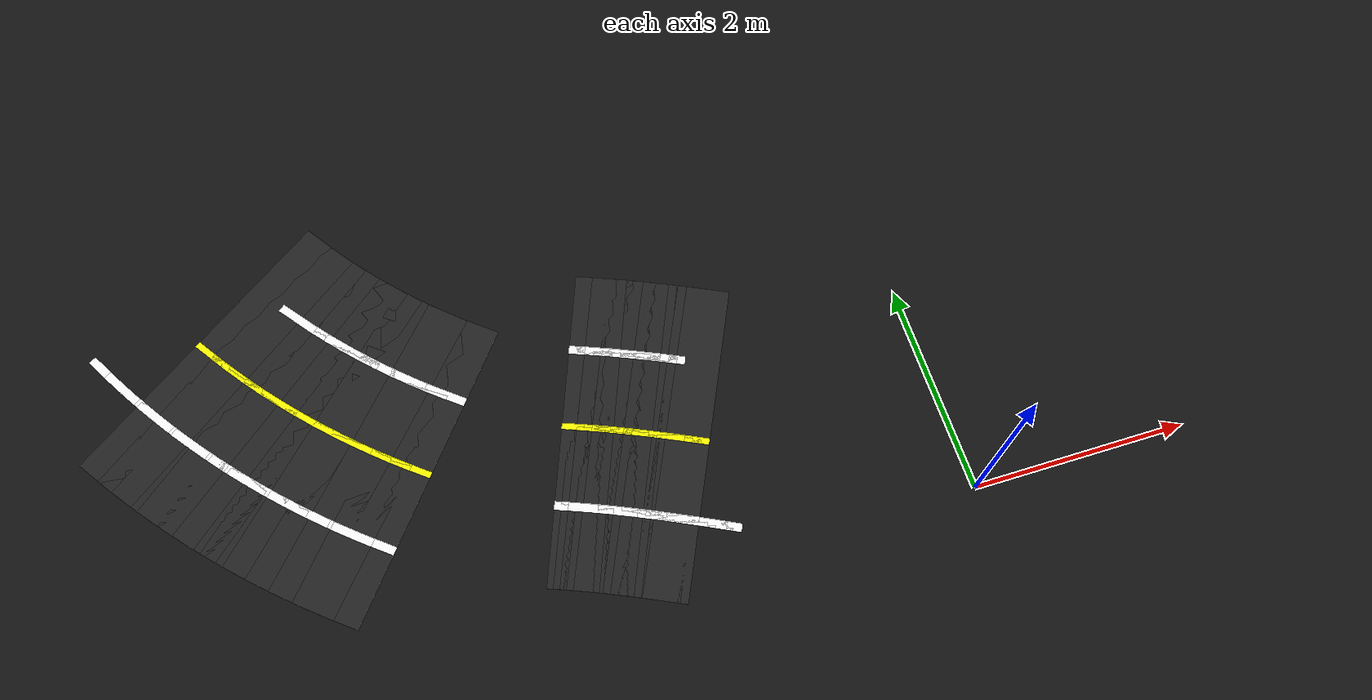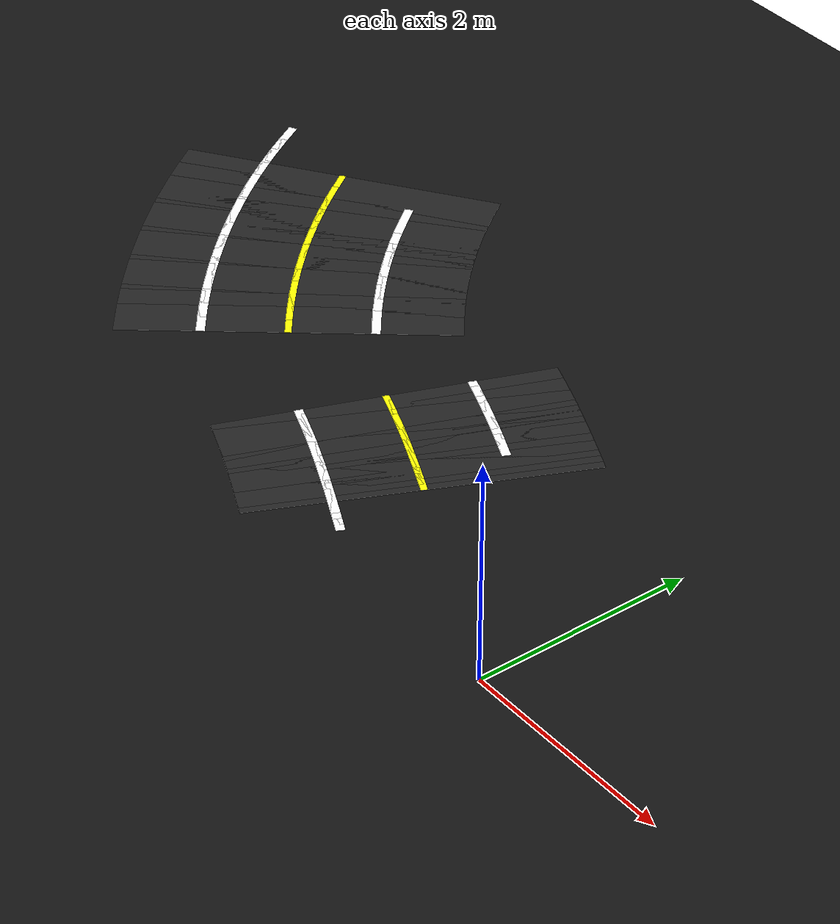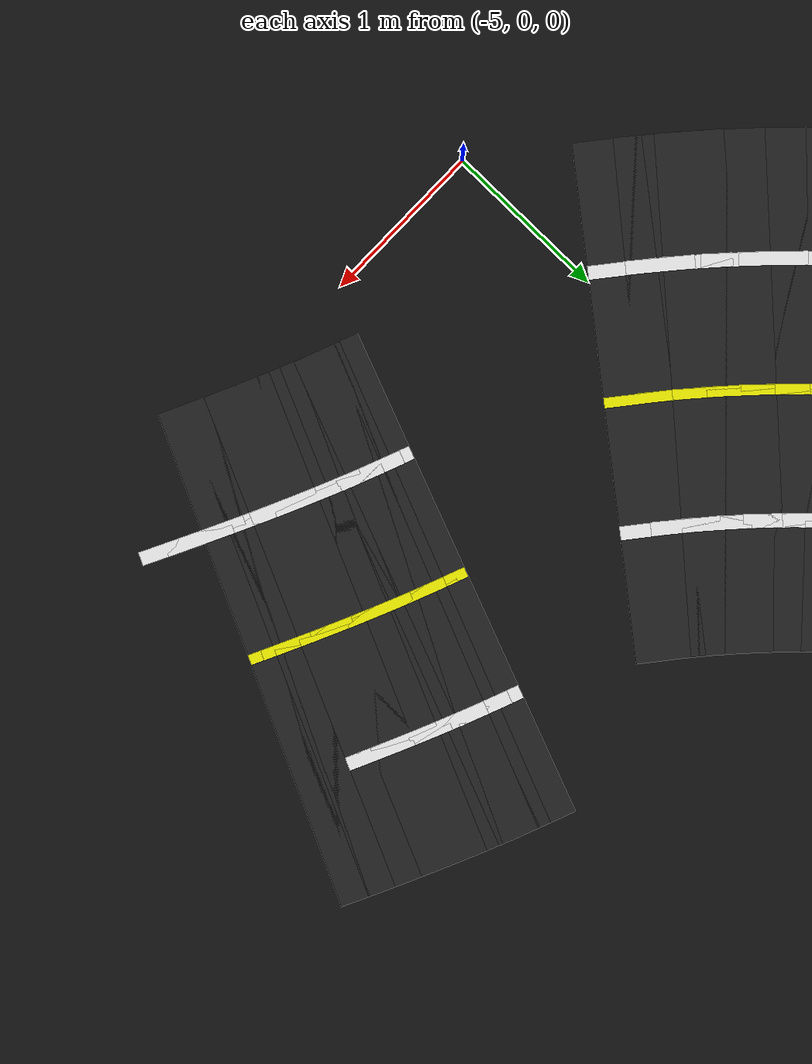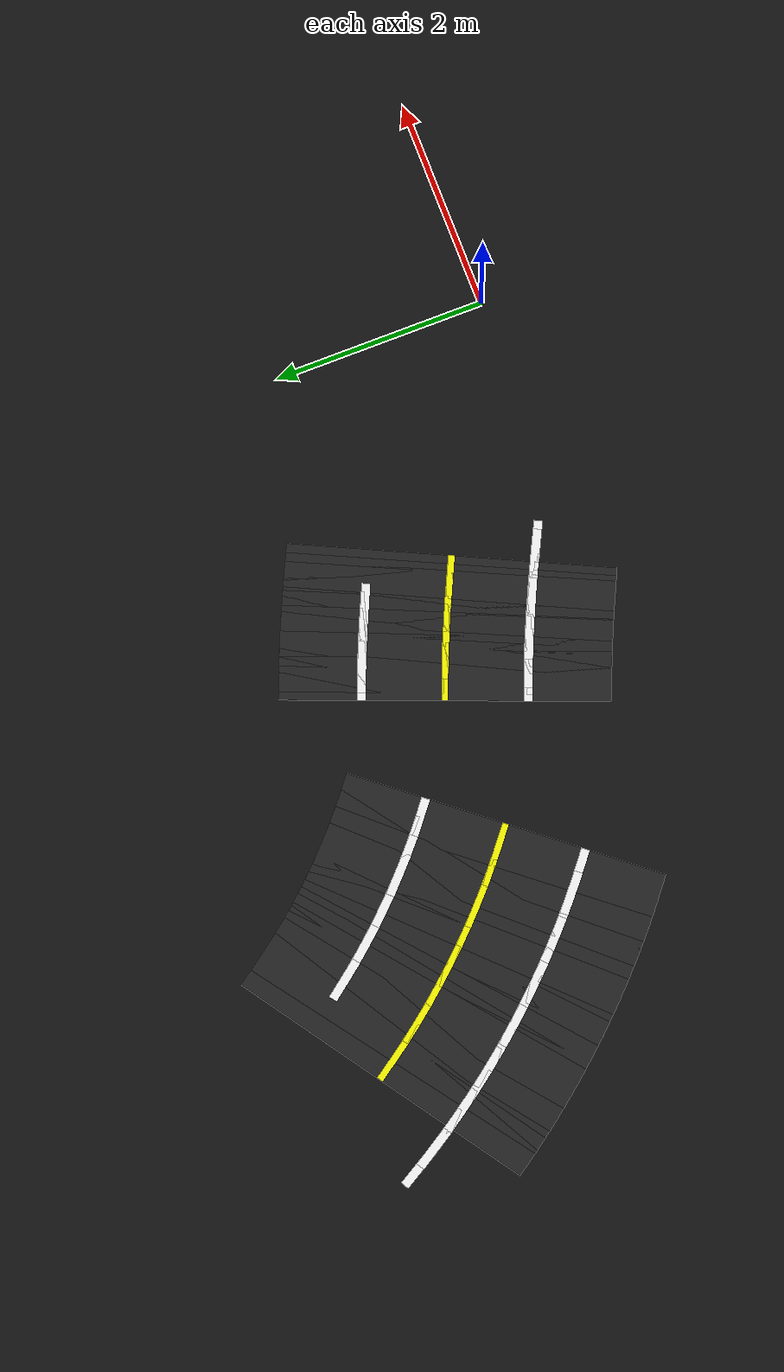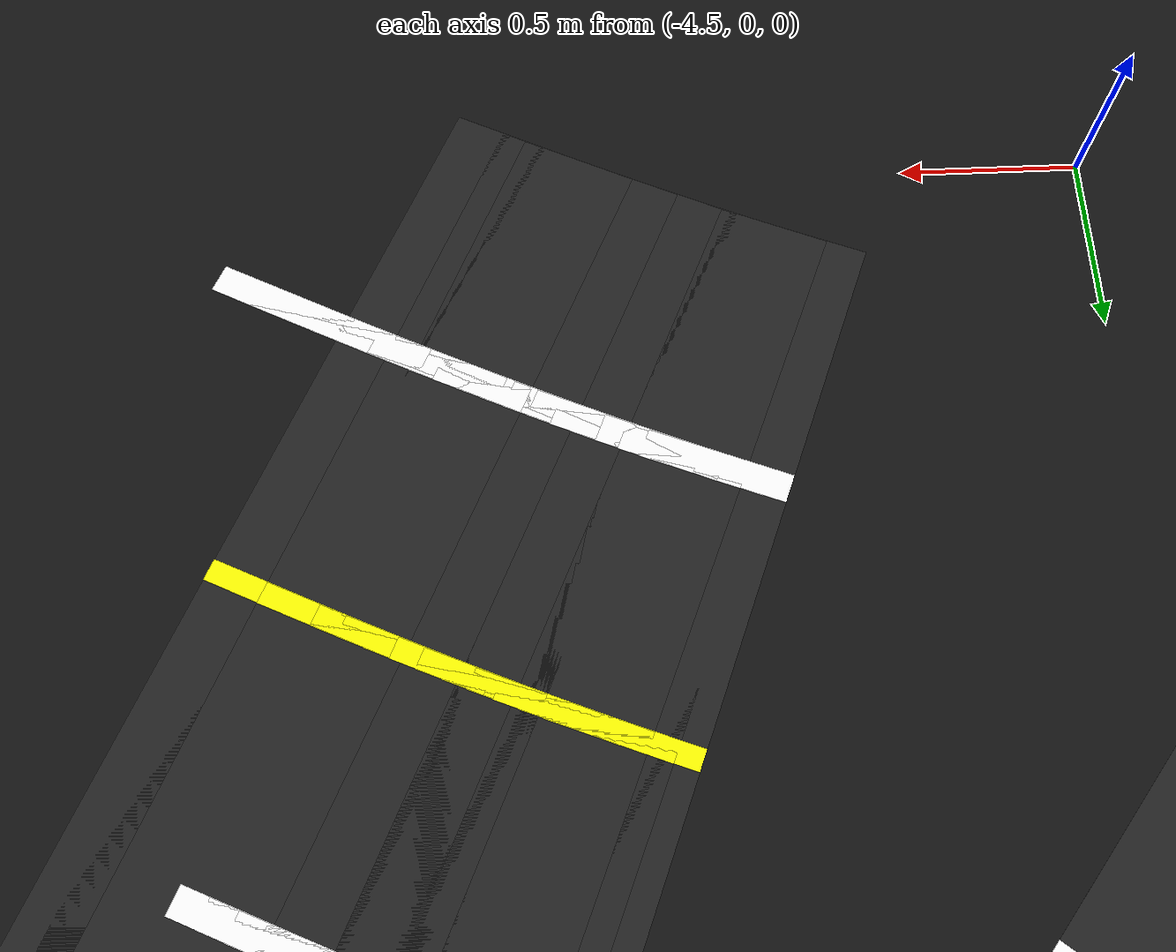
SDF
<sdf version="1.6">
 <world name="figure8_world">
  <model name="ground_plane">
   <static>true</static>
   <link name="link">
    <collision name="collision">
     <geometry><plane><normal>0 0 1</normal><size>120 120</size></plane></geometry>
    </collision>
    <visual name="visual">
     <geometry><plane><normal>0 0 1</normal><size>120 120</size></plane></geometry>
     <material><ambient>0.08 0.08 0.08 1</ambient><diffuse>0.08 0.08 0.08 1</diffuse></material>
    </visual>
   </link>
  </model>
  <model name="seg_00561">
   <static>true</static>
   <pose>-7.1447 3.3750 0.0030 0 0 5.2360</pose>
   <link name="link">
    <collision name="collision"><geometry><box><size>0.4000 0.0800 0.002</size></box></geometry></collision>
    <visual name="visual">
     <geometry><box><size>0.4000 0.0800 0.002</size></box></geometry>
     <material><ambient>1 1 1 1</ambient><diffuse>1 1 1 1</diffuse></material>
    </visual>
   </link>
  </model>
  <model name="seg_00565">
   <static>true</static>
   <pose>-7.0343 3.1894 0.0030 0 0 5.2622</pose>
   <link name="link">
    <collision name="collision"><geometry><box><size>0.4000 0.0800 0.002</size></box></geometry></collision>
    <visual name="visual">
     <geometry><box><size>0.4000 0.0800 0.002</size></box></geometry>
     <material><ambient>1 1 1 1</ambient><diffuse>1 1 1 1</diffuse></material>
    </visual>
   </link>
  </model>
  <model name="seg_00569">
   <static>true</static>
   <pose>-6.9190 3.0067 0.0030 0 0 5.2883</pose>
   <link name="link">
    <collision name="collision"><geometry><box><size>0.4000 0.0800 0.002</size></box></geometry></collision>
    <visual name="visual">
     <geometry><box><size>0.4000 0.0800 0.002</size></box></geometry>
     <material><ambient>1 1 1 1</ambient><diffuse>1 1 1 1</diffuse></material>
    </visual>
   </link>
  </model>
  <model name="seg_00572">
   <static>true</static>
   <pose>-6.1809 3.2520 0.0010 0 0 5.3145</pose>
   <link name="link">
    <collision name="collision"><geometry><box><size>0.4000 3.0000 0.002</size></box></geometry></collision>
    <visual name="visual">
     <geometry><box><size>0.4000 3.0000 0.002</size></box></geometry>
     <material><ambient>0.14 0.14 0.14 1</ambient><diffuse>0.14 0.14 0.14 1</diffuse></material>
    </visual>
   </link>
  </model>
  <model name="seg_00573">
   <static>true</static>
   <pose>-6.7990 2.8271 0.0030 0 0 5.3145</pose>
   <link name="link">
    <collision name="collision"><geometry><box><size>0.4000 0.0800 0.002</size></box></geometry></collision>
    <visual name="visual">
     <geometry><box><size>0.4000 0.0800 0.002</size></box></geometry>
     <material><ambient>1 1 1 1</ambient><diffuse>1 1 1 1</diffuse></material>
    </visual>
   </link>
  </model>
  <model name="seg_00575">
   <static>true</static>
   <pose>-6.1809 3.2520 0.0030 0 0 5.3145</pose>
   <link name="link">
    <collision name="collision"><geometry><box><size>0.4000 0.0600 0.002</size></box></geometry></collision>
    <visual name="visual">
     <geometry><box><size>0.4000 0.0600 0.002</size></box></geometry>
     <material><ambient>1 1 0 1</ambient><diffuse>1 1 0 1</diffuse></material>
    </visual>
   </link>
  </model>
  <model name="seg_00576">
   <static>true</static>
   <pose>-6.0676 3.0916 0.0010 0 0 5.3407</pose>
   <link name="link">
    <collision name="collision"><geometry><box><size>0.4000 3.0000 0.002</size></box></geometry></collision>
    <visual name="visual">
     <geometry><box><size>0.4000 3.0000 0.002</size></box></geometry>
     <material><ambient>0.14 0.14 0.14 1</ambient><diffuse>0.14 0.14 0.14 1</diffuse></material>
    </visual>
   </link>
  </model>
  <model name="seg_00577">
   <static>true</static>
   <pose>-6.6744 2.6508 0.0030 0 0 5.3407</pose>
   <link name="link">
    <collision name="collision"><geometry><box><size>0.4000 0.0800 0.002</size></box></geometry></collision>
    <visual name="visual">
     <geometry><box><size>0.4000 0.0800 0.002</size></box></geometry>
     <material><ambient>1 1 1 1</ambient><diffuse>1 1 1 1</diffuse></material>
    </visual>
   </link>
  </model>
  <model name="seg_00579">
   <static>true</static>
   <pose>-6.0676 3.0916 0.0030 0 0 5.3407</pose>
   <link name="link">
    <collision name="collision"><geometry><box><size>0.4000 0.0600 0.002</size></box></geometry></collision>
    <visual name="visual">
     <geometry><box><size>0.4000 0.0600 0.002</size></box></geometry>
     <material><ambient>1 1 0 1</ambient><diffuse>1 1 0 1</diffuse></material>
    </visual>
   </link>
  </model>
  <model name="seg_00580">
   <static>true</static>
   <pose>-5.9502 2.9343 0.0010 0 0 5.3669</pose>
   <link name="link">
    <collision name="collision"><geometry><box><size>0.4000 3.0000 0.002</size></box></geometry></collision>
    <visual name="visual">
     <geometry><box><size>0.4000 3.0000 0.002</size></box></geometry>
     <material><ambient>0.14 0.14 0.14 1</ambient><diffuse>0.14 0.14 0.14 1</diffuse></material>
    </visual>
   </link>
  </model>
  <model name="seg_00581">
   <static>true</static>
   <pose>-6.5452 2.4777 0.0030 0 0 5.3669</pose>
   <link name="link">
    <collision name="collision"><geometry><box><size>0.4000 0.0800 0.002</size></box></geometry></collision>
    <visual name="visual">
     <geometry><box><size>0.4000 0.0800 0.002</size></box></geometry>
     <material><ambient>1 1 1 1</ambient><diffuse>1 1 1 1</diffuse></material>
    </visual>
   </link>
  </model>
  <model name="seg_00582">
   <static>true</static>
   <pose>-5.3551 3.3909 0.0030 0 0 5.3669</pose>
   <link name="link">
    <collision name="collision"><geometry><box><size>0.4000 0.0800 0.002</size></box></geometry></collision>
    <visual name="visual">
     <geometry><box><size>0.4000 0.0800 0.002</size></box></geometry>
     <material><ambient>1 1 1 1</ambient><diffuse>1 1 1 1</diffuse></material>
    </visual>
   </link>
  </model>
  <model name="seg_00583">
   <static>true</static>
   <pose>-5.9502 2.9343 0.0030 0 0 5.3669</pose>
   <link name="link">
    <collision name="collision"><geometry><box><size>0.4000 0.0600 0.002</size></box></geometry></collision>
    <visual name="visual">
     <geometry><box><size>0.4000 0.0600 0.002</size></box></geometry>
     <material><ambient>1 1 0 1</ambient><diffuse>1 1 0 1</diffuse></material>
    </visual>
   </link>
  </model>
  <model name="seg_00584">
   <static>true</static>
   <pose>-5.8286 2.7801 0.0010 0 0 5.3931</pose>
   <link name="link">
    <collision name="collision"><geometry><box><size>0.4000 3.0000 0.002</size></box></geometry></collision>
    <visual name="visual">
     <geometry><box><size>0.4000 3.0000 0.002</size></box></geometry>
     <material><ambient>0.14 0.14 0.14 1</ambient><diffuse>0.14 0.14 0.14 1</diffuse></material>
    </visual>
   </link>
  </model>
  <model name="seg_00585">
   <static>true</static>
   <pose>-6.4115 2.3081 0.0030 0 0 5.3931</pose>
   <link name="link">
    <collision name="collision"><geometry><box><size>0.4000 0.0800 0.002</size></box></geometry></collision>
    <visual name="visual">
     <geometry><box><size>0.4000 0.0800 0.002</size></box></geometry>
     <material><ambient>1 1 1 1</ambient><diffuse>1 1 1 1</diffuse></material>
    </visual>
   </link>
  </model>
  <model name="seg_00586">
   <static>true</static>
   <pose>-5.2457 3.2521 0.0030 0 0 5.3931</pose>
   <link name="link">
    <collision name="collision"><geometry><box><size>0.4000 0.0800 0.002</size></box></geometry></collision>
    <visual name="visual">
     <geometry><box><size>0.4000 0.0800 0.002</size></box></geometry>
     <material><ambient>1 1 1 1</ambient><diffuse>1 1 1 1</diffuse></material>
    </visual>
   </link>
  </model>
  <model name="seg_00587">
   <static>true</static>
   <pose>-5.8286 2.7801 0.0030 0 0 5.3931</pose>
   <link name="link">
    <collision name="collision"><geometry><box><size>0.4000 0.0600 0.002</size></box></geometry></collision>
    <visual name="visual">
     <geometry><box><size>0.4000 0.0600 0.002</size></box></geometry>
     <material><ambient>1 1 0 1</ambient><diffuse>1 1 0 1</diffuse></material>
    </visual>
   </link>
  </model>
  <model name="seg_00588">
   <static>true</static>
   <pose>-5.7030 2.6291 0.0010 0 0 5.4192</pose>
   <link name="link">
    <collision name="collision"><geometry><box><size>0.4000 3.0000 0.002</size></box></geometry></collision>
    <visual name="visual">
     <geometry><box><size>0.4000 3.0000 0.002</size></box></geometry>
     <material><ambient>0.14 0.14 0.14 1</ambient><diffuse>0.14 0.14 0.14 1</diffuse></material>
    </visual>
   </link>
  </model>
  <model name="seg_00589">
   <static>true</static>
   <pose>-6.2733 2.1421 0.0030 0 0 5.4192</pose>
   <link name="link">
    <collision name="collision"><geometry><box><size>0.4000 0.0800 0.002</size></box></geometry></collision>
    <visual name="visual">
     <geometry><box><size>0.4000 0.0800 0.002</size></box></geometry>
     <material><ambient>1 1 1 1</ambient><diffuse>1 1 1 1</diffuse></material>
    </visual>
   </link>
  </model>
  <model name="seg_00590">
   <static>true</static>
   <pose>-5.1327 3.1162 0.0030 0 0 5.4192</pose>
   <link name="link">
    <collision name="collision"><geometry><box><size>0.4000 0.0800 0.002</size></box></geometry></collision>
    <visual name="visual">
     <geometry><box><size>0.4000 0.0800 0.002</size></box></geometry>
     <material><ambient>1 1 1 1</ambient><diffuse>1 1 1 1</diffuse></material>
    </visual>
   </link>
  </model>
  <model name="seg_00591">
   <static>true</static>
   <pose>-5.7030 2.6291 0.0030 0 0 5.4192</pose>
   <link name="link">
    <collision name="collision"><geometry><box><size>0.4000 0.0600 0.002</size></box></geometry></collision>
    <visual name="visual">
     <geometry><box><size>0.4000 0.0600 0.002</size></box></geometry>
     <material><ambient>1 1 0 1</ambient><diffuse>1 1 0 1</diffuse></material>
    </visual>
   </link>
  </model>
  <model name="seg_00592">
   <static>true</static>
   <pose>-5.5736 2.4815 0.0010 0 0 5.4454</pose>
   <link name="link">
    <collision name="collision"><geometry><box><size>0.4000 3.0000 0.002</size></box></geometry></collision>
    <visual name="visual">
     <geometry><box><size>0.4000 3.0000 0.002</size></box></geometry>
     <material><ambient>0.14 0.14 0.14 1</ambient><diffuse>0.14 0.14 0.14 1</diffuse></material>
    </visual>
   </link>
  </model>
  <model name="seg_00593">
   <static>true</static>
   <pose>-6.1309 1.9797 0.0030 0 0 5.4454</pose>
   <link name="link">
    <collision name="collision"><geometry><box><size>0.4000 0.0800 0.002</size></box></geometry></collision>
    <visual name="visual">
     <geometry><box><size>0.4000 0.0800 0.002</size></box></geometry>
     <material><ambient>1 1 1 1</ambient><diffuse>1 1 1 1</diffuse></material>
    </visual>
   </link>
  </model>
  <model name="seg_00594">
   <static>true</static>
   <pose>-5.0162 2.9834 0.0030 0 0 5.4454</pose>
   <link name="link">
    <collision name="collision"><geometry><box><size>0.4000 0.0800 0.002</size></box></geometry></collision>
    <visual name="visual">
     <geometry><box><size>0.4000 0.0800 0.002</size></box></geometry>
     <material><ambient>1 1 1 1</ambient><diffuse>1 1 1 1</diffuse></material>
    </visual>
   </link>
  </model>
  <model name="seg_00595">
   <static>true</static>
   <pose>-5.5736 2.4815 0.0030 0 0 5.4454</pose>
   <link name="link">
    <collision name="collision"><geometry><box><size>0.4000 0.0600 0.002</size></box></geometry></collision>
    <visual name="visual">
     <geometry><box><size>0.4000 0.0600 0.002</size></box></geometry>
     <material><ambient>1 1 0 1</ambient><diffuse>1 1 0 1</diffuse></material>
    </visual>
   </link>
  </model>
  <model name="seg_00596">
   <static>true</static>
   <pose>-5.4403 2.3373 0.0010 0 0 5.4716</pose>
   <link name="link">
    <collision name="collision"><geometry><box><size>0.4000 3.0000 0.002</size></box></geometry></collision>
    <visual name="visual">
     <geometry><box><size>0.4000 3.0000 0.002</size></box></geometry>
     <material><ambient>0.14 0.14 0.14 1</ambient><diffuse>0.14 0.14 0.14 1</diffuse></material>
    </visual>
   </link>
  </model>
  <model name="seg_00597">
   <static>true</static>
   <pose>-5.9843 1.8211 0.0030 0 0 5.4716</pose>
   <link name="link">
    <collision name="collision"><geometry><box><size>0.4000 0.0800 0.002</size></box></geometry></collision>
    <visual name="visual">
     <geometry><box><size>0.4000 0.0800 0.002</size></box></geometry>
     <material><ambient>1 1 1 1</ambient><diffuse>1 1 1 1</diffuse></material>
    </visual>
   </link>
  </model>
  <model name="seg_00598">
   <static>true</static>
   <pose>-4.8963 2.8536 0.0030 0 0 5.4716</pose>
   <link name="link">
    <collision name="collision"><geometry><box><size>0.4000 0.0800 0.002</size></box></geometry></collision>
    <visual name="visual">
     <geometry><box><size>0.4000 0.0800 0.002</size></box></geometry>
     <material><ambient>1 1 1 1</ambient><diffuse>1 1 1 1</diffuse></material>
    </visual>
   </link>
  </model>
  <model name="seg_00599">
   <static>true</static>
   <pose>-5.4403 2.3373 0.0030 0 0 5.4716</pose>
   <link name="link">
    <collision name="collision"><geometry><box><size>0.4000 0.0600 0.002</size></box></geometry></collision>
    <visual name="visual">
     <geometry><box><size>0.4000 0.0600 0.002</size></box></geometry>
     <material><ambient>1 1 0 1</ambient><diffuse>1 1 0 1</diffuse></material>
    </visual>
   </link>
  </model>
  <model name="seg_00600">
   <static>true</static>
   <pose>-5.3033 2.1967 0.0010 0 0 5.4978</pose>
   <link name="link">
    <collision name="collision"><geometry><box><size>0.4000 3.0000 0.002</size></box></geometry></collision>
    <visual name="visual">
     <geometry><box><size>0.4000 3.0000 0.002</size></box></geometry>
     <material><ambient>0.14 0.14 0.14 1</ambient><diffuse>0.14 0.14 0.14 1</diffuse></material>
    </visual>
   </link>
  </model>
  <model name="seg_00601">
   <static>true</static>
   <pose>-5.8336 1.6664 0.0030 0 0 5.4978</pose>
   <link name="link">
    <collision name="collision"><geometry><box><size>0.4000 0.0800 0.002</size></box></geometry></collision>
    <visual name="visual">
     <geometry><box><size>0.4000 0.0800 0.002</size></box></geometry>
     <material><ambient>1 1 1 1</ambient><diffuse>1 1 1 1</diffuse></material>
    </visual>
   </link>
  </model>
  <model name="seg_00602">
   <static>true</static>
   <pose>-4.7730 2.7270 0.0030 0 0 5.4978</pose>
   <link name="link">
    <collision name="collision"><geometry><box><size>0.4000 0.0800 0.002</size></box></geometry></collision>
    <visual name="visual">
     <geometry><box><size>0.4000 0.0800 0.002</size></box></geometry>
     <material><ambient>1 1 1 1</ambient><diffuse>1 1 1 1</diffuse></material>
    </visual>
   </link>
  </model>
  <model name="seg_00603">
   <static>true</static>
   <pose>-5.3033 2.1967 0.0030 0 0 5.4978</pose>
   <link name="link">
    <collision name="collision"><geometry><box><size>0.4000 0.0600 0.002</size></box></geometry></collision>
    <visual name="visual">
     <geometry><box><size>0.4000 0.0600 0.002</size></box></geometry>
     <material><ambient>1 1 0 1</ambient><diffuse>1 1 0 1</diffuse></material>
    </visual>
   </link>
  </model>
  <model name="seg_00604">
   <static>true</static>
   <pose>-5.1627 2.0597 0.0010 0 0 5.5240</pose>
   <link name="link">
    <collision name="collision"><geometry><box><size>0.4000 3.0000 0.002</size></box></geometry></collision>
    <visual name="visual">
     <geometry><box><size>0.4000 3.0000 0.002</size></box></geometry>
     <material><ambient>0.14 0.14 0.14 1</ambient><diffuse>0.14 0.14 0.14 1</diffuse></material>
    </visual>
   </link>
  </model>
  <model name="seg_00605">
   <static>true</static>
   <pose>-5.6789 1.5157 0.0030 0 0 5.5240</pose>
   <link name="link">
    <collision name="collision"><geometry><box><size>0.4000 0.0800 0.002</size></box></geometry></collision>
    <visual name="visual">
     <geometry><box><size>0.4000 0.0800 0.002</size></box></geometry>
     <material><ambient>1 1 1 1</ambient><diffuse>1 1 1 1</diffuse></material>
    </visual>
   </link>
  </model>
  <model name="seg_00606">
   <static>true</static>
   <pose>-4.6464 2.6037 0.0030 0 0 5.5240</pose>
   <link name="link">
    <collision name="collision"><geometry><box><size>0.4000 0.0800 0.002</size></box></geometry></collision>
    <visual name="visual">
     <geometry><box><size>0.4000 0.0800 0.002</size></box></geometry>
     <material><ambient>1 1 1 1</ambient><diffuse>1 1 1 1</diffuse></material>
    </visual>
   </link>
  </model>
  <model name="seg_00607">
   <static>true</static>
   <pose>-5.1627 2.0597 0.0030 0 0 5.5240</pose>
   <link name="link">
    <collision name="collision"><geometry><box><size>0.4000 0.0600 0.002</size></box></geometry></collision>
    <visual name="visual">
     <geometry><box><size>0.4000 0.0600 0.002</size></box></geometry>
     <material><ambient>1 1 0 1</ambient><diffuse>1 1 0 1</diffuse></material>
    </visual>
   </link>
  </model>
  <model name="seg_00608">
   <static>true</static>
   <pose>-5.0185 1.9264 0.0010 0 0 5.5501</pose>
   <link name="link">
    <collision name="collision"><geometry><box><size>0.4000 3.0000 0.002</size></box></geometry></collision>
    <visual name="visual">
     <geometry><box><size>0.4000 3.0000 0.002</size></box></geometry>
     <material><ambient>0.14 0.14 0.14 1</ambient><diffuse>0.14 0.14 0.14 1</diffuse></material>
    </visual>
   </link>
  </model>
  <model name="seg_00609">
   <static>true</static>
   <pose>-5.5203 1.3691 0.0030 0 0 5.5501</pose>
   <link name="link">
    <collision name="collision"><geometry><box><size>0.4000 0.0800 0.002</size></box></geometry></collision>
    <visual name="visual">
     <geometry><box><size>0.4000 0.0800 0.002</size></box></geometry>
     <material><ambient>1 1 1 1</ambient><diffuse>1 1 1 1</diffuse></material>
    </visual>
   </link>
  </model>
  <model name="seg_00610">
   <static>true</static>
   <pose>-4.5166 2.4838 0.0030 0 0 5.5501</pose>
   <link name="link">
    <collision name="collision"><geometry><box><size>0.4000 0.0800 0.002</size></box></geometry></collision>
    <visual name="visual">
     <geometry><box><size>0.4000 0.0800 0.002</size></box></geometry>
     <material><ambient>1 1 1 1</ambient><diffuse>1 1 1 1</diffuse></material>
    </visual>
   </link>
  </model>
  <model name="seg_00611">
   <static>true</static>
   <pose>-5.0185 1.9264 0.0030 0 0 5.5501</pose>
   <link name="link">
    <collision name="collision"><geometry><box><size>0.4000 0.0600 0.002</size></box></geometry></collision>
    <visual name="visual">
     <geometry><box><size>0.4000 0.0600 0.002</size></box></geometry>
     <material><ambient>1 1 0 1</ambient><diffuse>1 1 0 1</diffuse></material>
    </visual>
   </link>
  </model>
  <model name="seg_00612">
   <static>true</static>
   <pose>-4.8709 1.7970 0.0010 0 0 5.5763</pose>
   <link name="link">
    <collision name="collision"><geometry><box><size>0.4000 3.0000 0.002</size></box></geometry></collision>
    <visual name="visual">
     <geometry><box><size>0.4000 3.0000 0.002</size></box></geometry>
     <material><ambient>0.14 0.14 0.14 1</ambient><diffuse>0.14 0.14 0.14 1</diffuse></material>
    </visual>
   </link>
  </model>
  <model name="seg_00613">
   <static>true</static>
   <pose>-5.3579 1.2267 0.0030 0 0 5.5763</pose>
   <link name="link">
    <collision name="collision"><geometry><box><size>0.4000 0.0800 0.002</size></box></geometry></collision>
    <visual name="visual">
     <geometry><box><size>0.4000 0.0800 0.002</size></box></geometry>
     <material><ambient>1 1 1 1</ambient><diffuse>1 1 1 1</diffuse></material>
    </visual>
   </link>
  </model>
  <model name="seg_00614">
   <static>true</static>
   <pose>-4.3838 2.3673 0.0030 0 0 5.5763</pose>
   <link name="link">
    <collision name="collision"><geometry><box><size>0.4000 0.0800 0.002</size></box></geometry></collision>
    <visual name="visual">
     <geometry><box><size>0.4000 0.0800 0.002</size></box></geometry>
     <material><ambient>1 1 1 1</ambient><diffuse>1 1 1 1</diffuse></material>
    </visual>
   </link>
  </model>
  <model name="seg_00615">
   <static>true</static>
   <pose>-4.8709 1.7970 0.0030 0 0 5.5763</pose>
   <link name="link">
    <collision name="collision"><geometry><box><size>0.4000 0.0600 0.002</size></box></geometry></collision>
    <visual name="visual">
     <geometry><box><size>0.4000 0.0600 0.002</size></box></geometry>
     <material><ambient>1 1 0 1</ambient><diffuse>1 1 0 1</diffuse></material>
    </visual>
   </link>
  </model>
  <model name="seg_00616">
   <static>true</static>
   <pose>-4.7199 1.6714 0.0010 0 0 5.6025</pose>
   <link name="link">
    <collision name="collision"><geometry><box><size>0.4000 3.0000 0.002</size></box></geometry></collision>
    <visual name="visual">
     <geometry><box><size>0.4000 3.0000 0.002</size></box></geometry>
     <material><ambient>0.14 0.14 0.14 1</ambient><diffuse>0.14 0.14 0.14 1</diffuse></material>
    </visual>
   </link>
  </model>
  <model name="seg_00617">
   <static>true</static>
   <pose>-5.1919 1.0885 0.0030 0 0 5.6025</pose>
   <link name="link">
    <collision name="collision"><geometry><box><size>0.4000 0.0800 0.002</size></box></geometry></collision>
    <visual name="visual">
     <geometry><box><size>0.4000 0.0800 0.002</size></box></geometry>
     <material><ambient>1 1 1 1</ambient><diffuse>1 1 1 1</diffuse></material>
    </visual>
   </link>
  </model>
  <model name="seg_00618">
   <static>true</static>
   <pose>-4.2479 2.2543 0.0030 0 0 5.6025</pose>
   <link name="link">
    <collision name="collision"><geometry><box><size>0.4000 0.0800 0.002</size></box></geometry></collision>
    <visual name="visual">
     <geometry><box><size>0.4000 0.0800 0.002</size></box></geometry>
     <material><ambient>1 1 1 1</ambient><diffuse>1 1 1 1</diffuse></material>
    </visual>
   </link>
  </model>
  <model name="seg_00619">
   <static>true</static>
   <pose>-4.7199 1.6714 0.0030 0 0 5.6025</pose>
   <link name="link">
    <collision name="collision"><geometry><box><size>0.4000 0.0600 0.002</size></box></geometry></collision>
    <visual name="visual">
     <geometry><box><size>0.4000 0.0600 0.002</size></box></geometry>
     <material><ambient>1 1 0 1</ambient><diffuse>1 1 0 1</diffuse></material>
    </visual>
   </link>
  </model>
  <model name="seg_01512">
   <static>true</static>
   <pose>-3.1389 1.5760 0.0010 0 0 -0.3747</pose>
   <link name="link">
    <collision name="collision"><geometry><box><size>0.4000 3.0000 0.002</size></box></geometry></collision>
    <visual name="visual">
     <geometry><box><size>0.4000 3.0000 0.002</size></box></geometry>
     <material><ambient>0.14 0.14 0.14 1</ambient><diffuse>0.14 0.14 0.14 1</diffuse></material>
    </visual>
   </link>
  </model>
  <model name="seg_01513">
   <static>true</static>
   <pose>-2.8645 2.2740 0.0030 0 0 -0.3747</pose>
   <link name="link">
    <collision name="collision"><geometry><box><size>0.4000 0.0800 0.002</size></box></geometry></collision>
    <visual name="visual">
     <geometry><box><size>0.4000 0.0800 0.002</size></box></geometry>
     <material><ambient>1 1 1 1</ambient><diffuse>1 1 1 1</diffuse></material>
    </visual>
   </link>
  </model>
  <model name="seg_01514">
   <static>true</static>
   <pose>-3.4134 0.8780 0.0030 0 0 -0.3747</pose>
   <link name="link">
    <collision name="collision"><geometry><box><size>0.4000 0.0800 0.002</size></box></geometry></collision>
    <visual name="visual">
     <geometry><box><size>0.4000 0.0800 0.002</size></box></geometry>
     <material><ambient>1 1 1 1</ambient><diffuse>1 1 1 1</diffuse></material>
    </visual>
   </link>
  </model>
  <model name="seg_01515">
   <static>true</static>
   <pose>-3.1389 1.5760 0.0030 0 0 -0.3747</pose>
   <link name="link">
    <collision name="collision"><geometry><box><size>0.4000 0.0600 0.002</size></box></geometry></collision>
    <visual name="visual">
     <geometry><box><size>0.4000 0.0600 0.002</size></box></geometry>
     <material><ambient>1 1 0 1</ambient><diffuse>1 1 0 1</diffuse></material>
    </visual>
   </link>
  </model>
  <model name="seg_01516">
   <static>true</static>
   <pose>-3.0772 1.5512 0.0010 0 0 -0.3820</pose>
   <link name="link">
    <collision name="collision"><geometry><box><size>0.4000 3.0000 0.002</size></box></geometry></collision>
    <visual name="visual">
     <geometry><box><size>0.4000 3.0000 0.002</size></box></geometry>
     <material><ambient>0.14 0.14 0.14 1</ambient><diffuse>0.14 0.14 0.14 1</diffuse></material>
    </visual>
   </link>
  </model>
  <model name="seg_01517">
   <static>true</static>
   <pose>-2.7976 2.2471 0.0030 0 0 -0.3820</pose>
   <link name="link">
    <collision name="collision"><geometry><box><size>0.4000 0.0800 0.002</size></box></geometry></collision>
    <visual name="visual">
     <geometry><box><size>0.4000 0.0800 0.002</size></box></geometry>
     <material><ambient>1 1 1 1</ambient><diffuse>1 1 1 1</diffuse></material>
    </visual>
   </link>
  </model>
  <model name="seg_01518">
   <static>true</static>
   <pose>-3.3567 0.8552 0.0030 0 0 -0.3820</pose>
   <link name="link">
    <collision name="collision"><geometry><box><size>0.4000 0.0800 0.002</size></box></geometry></collision>
    <visual name="visual">
     <geometry><box><size>0.4000 0.0800 0.002</size></box></geometry>
     <material><ambient>1 1 1 1</ambient><diffuse>1 1 1 1</diffuse></material>
    </visual>
   </link>
  </model>
  <model name="seg_01519">
   <static>true</static>
   <pose>-3.0772 1.5512 0.0030 0 0 -0.3820</pose>
   <link name="link">
    <collision name="collision"><geometry><box><size>0.4000 0.0600 0.002</size></box></geometry></collision>
    <visual name="visual">
     <geometry><box><size>0.4000 0.0600 0.002</size></box></geometry>
     <material><ambient>1 1 0 1</ambient><diffuse>1 1 0 1</diffuse></material>
    </visual>
   </link>
  </model>
  <model name="seg_01520">
   <static>true</static>
   <pose>-3.0146 1.5255 0.0010 0 0 -0.3889</pose>
   <link name="link">
    <collision name="collision"><geometry><box><size>0.4000 3.0000 0.002</size></box></geometry></collision>
    <visual name="visual">
     <geometry><box><size>0.4000 3.0000 0.002</size></box></geometry>
     <material><ambient>0.14 0.14 0.14 1</ambient><diffuse>0.14 0.14 0.14 1</diffuse></material>
    </visual>
   </link>
  </model>
  <model name="seg_01521">
   <static>true</static>
   <pose>-2.7302 2.2195 0.0030 0 0 -0.3889</pose>
   <link name="link">
    <collision name="collision"><geometry><box><size>0.4000 0.0800 0.002</size></box></geometry></collision>
    <visual name="visual">
     <geometry><box><size>0.4000 0.0800 0.002</size></box></geometry>
     <material><ambient>1 1 1 1</ambient><diffuse>1 1 1 1</diffuse></material>
    </visual>
   </link>
  </model>
  <model name="seg_01522">
   <static>true</static>
   <pose>-3.2991 0.8316 0.0030 0 0 -0.3889</pose>
   <link name="link">
    <collision name="collision"><geometry><box><size>0.4000 0.0800 0.002</size></box></geometry></collision>
    <visual name="visual">
     <geometry><box><size>0.4000 0.0800 0.002</size></box></geometry>
     <material><ambient>1 1 1 1</ambient><diffuse>1 1 1 1</diffuse></material>
    </visual>
   </link>
  </model>
  <model name="seg_01523">
   <static>true</static>
   <pose>-3.0146 1.5255 0.0030 0 0 -0.3889</pose>
   <link name="link">
    <collision name="collision"><geometry><box><size>0.4000 0.0600 0.002</size></box></geometry></collision>
    <visual name="visual">
     <geometry><box><size>0.4000 0.0600 0.002</size></box></geometry>
     <material><ambient>1 1 0 1</ambient><diffuse>1 1 0 1</diffuse></material>
    </visual>
   </link>
  </model>
  <model name="seg_01524">
   <static>true</static>
   <pose>-2.9514 1.4992 0.0010 0 0 -0.3955</pose>
   <link name="link">
    <collision name="collision"><geometry><box><size>0.4000 3.0000 0.002</size></box></geometry></collision>
    <visual name="visual">
     <geometry><box><size>0.4000 3.0000 0.002</size></box></geometry>
     <material><ambient>0.14 0.14 0.14 1</ambient><diffuse>0.14 0.14 0.14 1</diffuse></material>
    </visual>
   </link>
  </model>
  <model name="seg_01525">
   <static>true</static>
   <pose>-2.6625 2.1912 0.0030 0 0 -0.3955</pose>
   <link name="link">
    <collision name="collision"><geometry><box><size>0.4000 0.0800 0.002</size></box></geometry></collision>
    <visual name="visual">
     <geometry><box><size>0.4000 0.0800 0.002</size></box></geometry>
     <material><ambient>1 1 1 1</ambient><diffuse>1 1 1 1</diffuse></material>
    </visual>
   </link>
  </model>
  <model name="seg_01526">
   <static>true</static>
   <pose>-3.2404 0.8071 0.0030 0 0 -0.3955</pose>
   <link name="link">
    <collision name="collision"><geometry><box><size>0.4000 0.0800 0.002</size></box></geometry></collision>
    <visual name="visual">
     <geometry><box><size>0.4000 0.0800 0.002</size></box></geometry>
     <material><ambient>1 1 1 1</ambient><diffuse>1 1 1 1</diffuse></material>
    </visual>
   </link>
  </model>
  <model name="seg_01527">
   <static>true</static>
   <pose>-2.9514 1.4992 0.0030 0 0 -0.3955</pose>
   <link name="link">
    <collision name="collision"><geometry><box><size>0.4000 0.0600 0.002</size></box></geometry></collision>
    <visual name="visual">
     <geometry><box><size>0.4000 0.0600 0.002</size></box></geometry>
     <material><ambient>1 1 0 1</ambient><diffuse>1 1 0 1</diffuse></material>
    </visual>
   </link>
  </model>
  <model name="seg_01528">
   <static>true</static>
   <pose>-2.8875 1.4720 0.0010 0 0 -0.4018</pose>
   <link name="link">
    <collision name="collision"><geometry><box><size>0.4000 3.0000 0.002</size></box></geometry></collision>
    <visual name="visual">
     <geometry><box><size>0.4000 3.0000 0.002</size></box></geometry>
     <material><ambient>0.14 0.14 0.14 1</ambient><diffuse>0.14 0.14 0.14 1</diffuse></material>
    </visual>
   </link>
  </model>
  <model name="seg_01529">
   <static>true</static>
   <pose>-2.5942 2.1623 0.0030 0 0 -0.4018</pose>
   <link name="link">
    <collision name="collision"><geometry><box><size>0.4000 0.0800 0.002</size></box></geometry></collision>
    <visual name="visual">
     <geometry><box><size>0.4000 0.0800 0.002</size></box></geometry>
     <material><ambient>1 1 1 1</ambient><diffuse>1 1 1 1</diffuse></material>
    </visual>
   </link>
  </model>
  <model name="seg_01530">
   <static>true</static>
   <pose>-3.1808 0.7817 0.0030 0 0 -0.4018</pose>
   <link name="link">
    <collision name="collision"><geometry><box><size>0.4000 0.0800 0.002</size></box></geometry></collision>
    <visual name="visual">
     <geometry><box><size>0.4000 0.0800 0.002</size></box></geometry>
     <material><ambient>1 1 1 1</ambient><diffuse>1 1 1 1</diffuse></material>
    </visual>
   </link>
  </model>
  <model name="seg_01531">
   <static>true</static>
   <pose>-2.8875 1.4720 0.0030 0 0 -0.4018</pose>
   <link name="link">
    <collision name="collision"><geometry><box><size>0.4000 0.0600 0.002</size></box></geometry></collision>
    <visual name="visual">
     <geometry><box><size>0.4000 0.0600 0.002</size></box></geometry>
     <material><ambient>1 1 0 1</ambient><diffuse>1 1 0 1</diffuse></material>
    </visual>
   </link>
  </model>
  <model name="seg_01532">
   <static>true</static>
   <pose>-2.8229 1.4441 0.0010 0 0 -0.4077</pose>
   <link name="link">
    <collision name="collision"><geometry><box><size>0.4000 3.0000 0.002</size></box></geometry></collision>
    <visual name="visual">
     <geometry><box><size>0.4000 3.0000 0.002</size></box></geometry>
     <material><ambient>0.14 0.14 0.14 1</ambient><diffuse>0.14 0.14 0.14 1</diffuse></material>
    </visual>
   </link>
  </model>
  <model name="seg_01533">
   <static>true</static>
   <pose>-2.5255 2.1326 0.0030 0 0 -0.4077</pose>
   <link name="link">
    <collision name="collision"><geometry><box><size>0.4000 0.0800 0.002</size></box></geometry></collision>
    <visual name="visual">
     <geometry><box><size>0.4000 0.0800 0.002</size></box></geometry>
     <material><ambient>1 1 1 1</ambient><diffuse>1 1 1 1</diffuse></material>
    </visual>
   </link>
  </model>
  <model name="seg_01534">
   <static>true</static>
   <pose>-3.1203 0.7556 0.0030 0 0 -0.4077</pose>
   <link name="link">
    <collision name="collision"><geometry><box><size>0.4000 0.0800 0.002</size></box></geometry></collision>
    <visual name="visual">
     <geometry><box><size>0.4000 0.0800 0.002</size></box></geometry>
     <material><ambient>1 1 1 1</ambient><diffuse>1 1 1 1</diffuse></material>
    </visual>
   </link>
  </model>
  <model name="seg_01535">
   <static>true</static>
   <pose>-2.8229 1.4441 0.0030 0 0 -0.4077</pose>
   <link name="link">
    <collision name="collision"><geometry><box><size>0.4000 0.0600 0.002</size></box></geometry></collision>
    <visual name="visual">
     <geometry><box><size>0.4000 0.0600 0.002</size></box></geometry>
     <material><ambient>1 1 0 1</ambient><diffuse>1 1 0 1</diffuse></material>
    </visual>
   </link>
  </model>
  <model name="seg_01536">
   <static>true</static>
   <pose>-2.7577 1.4155 0.0010 0 0 -0.4134</pose>
   <link name="link">
    <collision name="collision"><geometry><box><size>0.4000 3.0000 0.002</size></box></geometry></collision>
    <visual name="visual">
     <geometry><box><size>0.4000 3.0000 0.002</size></box></geometry>
     <material><ambient>0.14 0.14 0.14 1</ambient><diffuse>0.14 0.14 0.14 1</diffuse></material>
    </visual>
   </link>
  </model>
  <model name="seg_01537">
   <static>true</static>
   <pose>-2.4564 2.1023 0.0030 0 0 -0.4134</pose>
   <link name="link">
    <collision name="collision"><geometry><box><size>0.4000 0.0800 0.002</size></box></geometry></collision>
    <visual name="visual">
     <geometry><box><size>0.4000 0.0800 0.002</size></box></geometry>
     <material><ambient>1 1 1 1</ambient><diffuse>1 1 1 1</diffuse></material>
    </visual>
   </link>
  </model>
  <model name="seg_01538">
   <static>true</static>
   <pose>-3.0590 0.7287 0.0030 0 0 -0.4134</pose>
   <link name="link">
    <collision name="collision"><geometry><box><size>0.4000 0.0800 0.002</size></box></geometry></collision>
    <visual name="visual">
     <geometry><box><size>0.4000 0.0800 0.002</size></box></geometry>
     <material><ambient>1 1 1 1</ambient><diffuse>1 1 1 1</diffuse></material>
    </visual>
   </link>
  </model>
  <model name="seg_01539">
   <static>true</static>
   <pose>-2.7577 1.4155 0.0030 0 0 -0.4134</pose>
   <link name="link">
    <collision name="collision"><geometry><box><size>0.4000 0.0600 0.002</size></box></geometry></collision>
    <visual name="visual">
     <geometry><box><size>0.4000 0.0600 0.002</size></box></geometry>
     <material><ambient>1 1 0 1</ambient><diffuse>1 1 0 1</diffuse></material>
    </visual>
   </link>
  </model>
  <model name="seg_01540">
   <static>true</static>
   <pose>-2.6918 1.3862 0.0010 0 0 -0.4187</pose>
   <link name="link">
    <collision name="collision"><geometry><box><size>0.4000 3.0000 0.002</size></box></geometry></collision>
    <visual name="visual">
     <geometry><box><size>0.4000 3.0000 0.002</size></box></geometry>
     <material><ambient>0.14 0.14 0.14 1</ambient><diffuse>0.14 0.14 0.14 1</diffuse></material>
    </visual>
   </link>
  </model>
  <model name="seg_01541">
   <static>true</static>
   <pose>-2.3869 2.0714 0.0030 0 0 -0.4187</pose>
   <link name="link">
    <collision name="collision"><geometry><box><size>0.4000 0.0800 0.002</size></box></geometry></collision>
    <visual name="visual">
     <geometry><box><size>0.4000 0.0800 0.002</size></box></geometry>
     <material><ambient>1 1 1 1</ambient><diffuse>1 1 1 1</diffuse></material>
    </visual>
   </link>
  </model>
  <model name="seg_01542">
   <static>true</static>
   <pose>-2.9968 0.7010 0.0030 0 0 -0.4187</pose>
   <link name="link">
    <collision name="collision"><geometry><box><size>0.4000 0.0800 0.002</size></box></geometry></collision>
    <visual name="visual">
     <geometry><box><size>0.4000 0.0800 0.002</size></box></geometry>
     <material><ambient>1 1 1 1</ambient><diffuse>1 1 1 1</diffuse></material>
    </visual>
   </link>
  </model>
  <model name="seg_01543">
   <static>true</static>
   <pose>-2.6918 1.3862 0.0030 0 0 -0.4187</pose>
   <link name="link">
    <collision name="collision"><geometry><box><size>0.4000 0.0600 0.002</size></box></geometry></collision>
    <visual name="visual">
     <geometry><box><size>0.4000 0.0600 0.002</size></box></geometry>
     <material><ambient>1 1 0 1</ambient><diffuse>1 1 0 1</diffuse></material>
    </visual>
   </link>
  </model>
  <model name="seg_01544">
   <static>true</static>
   <pose>-2.6253 1.3562 0.0010 0 0 -0.4238</pose>
   <link name="link">
    <collision name="collision"><geometry><box><size>0.4000 3.0000 0.002</size></box></geometry></collision>
    <visual name="visual">
     <geometry><box><size>0.4000 3.0000 0.002</size></box></geometry>
     <material><ambient>0.14 0.14 0.14 1</ambient><diffuse>0.14 0.14 0.14 1</diffuse></material>
    </visual>
   </link>
  </model>
  <model name="seg_01545">
   <static>true</static>
   <pose>-2.3169 2.0398 0.0030 0 0 -0.4238</pose>
   <link name="link">
    <collision name="collision"><geometry><box><size>0.4000 0.0800 0.002</size></box></geometry></collision>
    <visual name="visual">
     <geometry><box><size>0.4000 0.0800 0.002</size></box></geometry>
     <material><ambient>1 1 1 1</ambient><diffuse>1 1 1 1</diffuse></material>
    </visual>
   </link>
  </model>
  <model name="seg_01546">
   <static>true</static>
   <pose>-2.9338 0.6725 0.0030 0 0 -0.4238</pose>
   <link name="link">
    <collision name="collision"><geometry><box><size>0.4000 0.0800 0.002</size></box></geometry></collision>
    <visual name="visual">
     <geometry><box><size>0.4000 0.0800 0.002</size></box></geometry>
     <material><ambient>1 1 1 1</ambient><diffuse>1 1 1 1</diffuse></material>
    </visual>
   </link>
  </model>
  <model name="seg_01547">
   <static>true</static>
   <pose>-2.6253 1.3562 0.0030 0 0 -0.4238</pose>
   <link name="link">
    <collision name="collision"><geometry><box><size>0.4000 0.0600 0.002</size></box></geometry></collision>
    <visual name="visual">
     <geometry><box><size>0.4000 0.0600 0.002</size></box></geometry>
     <material><ambient>1 1 0 1</ambient><diffuse>1 1 0 1</diffuse></material>
    </visual>
   </link>
  </model>
  <model name="seg_01548">
   <static>true</static>
   <pose>-2.5582 1.3255 0.0010 0 0 -0.4287</pose>
   <link name="link">
    <collision name="collision"><geometry><box><size>0.4000 3.0000 0.002</size></box></geometry></collision>
    <visual name="visual">
     <geometry><box><size>0.4000 3.0000 0.002</size></box></geometry>
     <material><ambient>0.14 0.14 0.14 1</ambient><diffuse>0.14 0.14 0.14 1</diffuse></material>
    </visual>
   </link>
  </model>
  <model name="seg_01549">
   <static>true</static>
   <pose>-2.2465 2.0076 0.0030 0 0 -0.4287</pose>
   <link name="link">
    <collision name="collision"><geometry><box><size>0.4000 0.0800 0.002</size></box></geometry></collision>
    <visual name="visual">
     <geometry><box><size>0.4000 0.0800 0.002</size></box></geometry>
     <material><ambient>1 1 1 1</ambient><diffuse>1 1 1 1</diffuse></material>
    </visual>
   </link>
  </model>
  <model name="seg_01550">
   <static>true</static>
   <pose>-2.8700 0.6434 0.0030 0 0 -0.4287</pose>
   <link name="link">
    <collision name="collision"><geometry><box><size>0.4000 0.0800 0.002</size></box></geometry></collision>
    <visual name="visual">
     <geometry><box><size>0.4000 0.0800 0.002</size></box></geometry>
     <material><ambient>1 1 1 1</ambient><diffuse>1 1 1 1</diffuse></material>
    </visual>
   </link>
  </model>
  <model name="seg_01551">
   <static>true</static>
   <pose>-2.5582 1.3255 0.0030 0 0 -0.4287</pose>
   <link name="link">
    <collision name="collision"><geometry><box><size>0.4000 0.0600 0.002</size></box></geometry></collision>
    <visual name="visual">
     <geometry><box><size>0.4000 0.0600 0.002</size></box></geometry>
     <material><ambient>1 1 0 1</ambient><diffuse>1 1 0 1</diffuse></material>
    </visual>
   </link>
  </model>
  <model name="seg_01552">
   <static>true</static>
   <pose>-2.4905 1.2942 0.0010 0 0 -0.4333</pose>
   <link name="link">
    <collision name="collision"><geometry><box><size>0.4000 3.0000 0.002</size></box></geometry></collision>
    <visual name="visual">
     <geometry><box><size>0.4000 3.0000 0.002</size></box></geometry>
     <material><ambient>0.14 0.14 0.14 1</ambient><diffuse>0.14 0.14 0.14 1</diffuse></material>
    </visual>
   </link>
  </model>
  <model name="seg_01554">
   <static>true</static>
   <pose>-2.8054 0.6135 0.0030 0 0 -0.4333</pose>
   <link name="link">
    <collision name="collision"><geometry><box><size>0.4000 0.0800 0.002</size></box></geometry></collision>
    <visual name="visual">
     <geometry><box><size>0.4000 0.0800 0.002</size></box></geometry>
     <material><ambient>1 1 1 1</ambient><diffuse>1 1 1 1</diffuse></material>
    </visual>
   </link>
  </model>
  <model name="seg_01555">
   <static>true</static>
   <pose>-2.4905 1.2942 0.0030 0 0 -0.4333</pose>
   <link name="link">
    <collision name="collision"><geometry><box><size>0.4000 0.0600 0.002</size></box></geometry></collision>
    <visual name="visual">
     <geometry><box><size>0.4000 0.0600 0.002</size></box></geometry>
     <material><ambient>1 1 0 1</ambient><diffuse>1 1 0 1</diffuse></material>
    </visual>
   </link>
  </model>
  <model name="seg_01556">
   <static>true</static>
   <pose>-2.4223 1.2623 0.0010 0 0 -0.4376</pose>
   <link name="link">
    <collision name="collision"><geometry><box><size>0.4000 3.0000 0.002</size></box></geometry></collision>
    <visual name="visual">
     <geometry><box><size>0.4000 3.0000 0.002</size></box></geometry>
     <material><ambient>0.14 0.14 0.14 1</ambient><diffuse>0.14 0.14 0.14 1</diffuse></material>
    </visual>
   </link>
  </model>
  <model name="seg_01558">
   <static>true</static>
   <pose>-2.7401 0.5829 0.0030 0 0 -0.4376</pose>
   <link name="link">
    <collision name="collision"><geometry><box><size>0.4000 0.0800 0.002</size></box></geometry></collision>
    <visual name="visual">
     <geometry><box><size>0.4000 0.0800 0.002</size></box></geometry>
     <material><ambient>1 1 1 1</ambient><diffuse>1 1 1 1</diffuse></material>
    </visual>
   </link>
  </model>
  <model name="seg_01559">
   <static>true</static>
   <pose>-2.4223 1.2623 0.0030 0 0 -0.4376</pose>
   <link name="link">
    <collision name="collision"><geometry><box><size>0.4000 0.0600 0.002</size></box></geometry></collision>
    <visual name="visual">
     <geometry><box><size>0.4000 0.0600 0.002</size></box></geometry>
     <material><ambient>1 1 0 1</ambient><diffuse>1 1 0 1</diffuse></material>
    </visual>
   </link>
  </model>
  <model name="seg_01560">
   <static>true</static>
   <pose>-2.3535 1.2297 0.0010 0 0 -0.4418</pose>
   <link name="link">
    <collision name="collision"><geometry><box><size>0.4000 3.0000 0.002</size></box></geometry></collision>
    <visual name="visual">
     <geometry><box><size>0.4000 3.0000 0.002</size></box></geometry>
     <material><ambient>0.14 0.14 0.14 1</ambient><diffuse>0.14 0.14 0.14 1</diffuse></material>
    </visual>
   </link>
  </model>
  <model name="seg_01562">
   <static>true</static>
   <pose>-2.6741 0.5517 0.0030 0 0 -0.4418</pose>
   <link name="link">
    <collision name="collision"><geometry><box><size>0.4000 0.0800 0.002</size></box></geometry></collision>
    <visual name="visual">
     <geometry><box><size>0.4000 0.0800 0.002</size></box></geometry>
     <material><ambient>1 1 1 1</ambient><diffuse>1 1 1 1</diffuse></material>
    </visual>
   </link>
  </model>
  <model name="seg_01563">
   <static>true</static>
   <pose>-2.3535 1.2297 0.0030 0 0 -0.4418</pose>
   <link name="link">
    <collision name="collision"><geometry><box><size>0.4000 0.0600 0.002</size></box></geometry></collision>
    <visual name="visual">
     <geometry><box><size>0.4000 0.0600 0.002</size></box></geometry>
     <material><ambient>1 1 0 1</ambient><diffuse>1 1 0 1</diffuse></material>
    </visual>
   </link>
  </model>
  <model name="seg_01564">
   <static>true</static>
   <pose>-2.2841 1.1966 0.0010 0 0 -0.4458</pose>
   <link name="link">
    <collision name="collision"><geometry><box><size>0.4000 3.0000 0.002</size></box></geometry></collision>
    <visual name="visual">
     <geometry><box><size>0.4000 3.0000 0.002</size></box></geometry>
     <material><ambient>0.14 0.14 0.14 1</ambient><diffuse>0.14 0.14 0.14 1</diffuse></material>
    </visual>
   </link>
  </model>
  <model name="seg_01566">
   <static>true</static>
   <pose>-2.6075 0.5199 0.0030 0 0 -0.4458</pose>
   <link name="link">
    <collision name="collision"><geometry><box><size>0.4000 0.0800 0.002</size></box></geometry></collision>
    <visual name="visual">
     <geometry><box><size>0.4000 0.0800 0.002</size></box></geometry>
     <material><ambient>1 1 1 1</ambient><diffuse>1 1 1 1</diffuse></material>
    </visual>
   </link>
  </model>
  <model name="seg_01567">
   <static>true</static>
   <pose>-2.2841 1.1966 0.0030 0 0 -0.4458</pose>
   <link name="link">
    <collision name="collision"><geometry><box><size>0.4000 0.0600 0.002</size></box></geometry></collision>
    <visual name="visual">
     <geometry><box><size>0.4000 0.0600 0.002</size></box></geometry>
     <material><ambient>1 1 0 1</ambient><diffuse>1 1 0 1</diffuse></material>
    </visual>
   </link>
  </model>
  <model name="seg_01570">
   <static>true</static>
   <pose>-2.5401 0.4874 0.0030 0 0 -0.4495</pose>
   <link name="link">
    <collision name="collision"><geometry><box><size>0.4000 0.0800 0.002</size></box></geometry></collision>
    <visual name="visual">
     <geometry><box><size>0.4000 0.0800 0.002</size></box></geometry>
     <material><ambient>1 1 1 1</ambient><diffuse>1 1 1 1</diffuse></material>
    </visual>
   </link>
  </model>
  <model name="seg_01574">
   <static>true</static>
   <pose>-2.4722 0.4543 0.0030 0 0 -0.4531</pose>
   <link name="link">
    <collision name="collision"><geometry><box><size>0.4000 0.0800 0.002</size></box></geometry></collision>
    <visual name="visual">
     <geometry><box><size>0.4000 0.0800 0.002</size></box></geometry>
     <material><ambient>1 1 1 1</ambient><diffuse>1 1 1 1</diffuse></material>
    </visual>
   </link>
  </model>
  <model name="seg_01578">
   <static>true</static>
   <pose>-2.4036 0.4206 0.0030 0 0 -0.4565</pose>
   <link name="link">
    <collision name="collision"><geometry><box><size>0.4000 0.0800 0.002</size></box></geometry></collision>
    <visual name="visual">
     <geometry><box><size>0.4000 0.0800 0.002</size></box></geometry>
     <material><ambient>1 1 1 1</ambient><diffuse>1 1 1 1</diffuse></material>
    </visual>
   </link>
  </model>
  <model name="seg_01582">
   <static>true</static>
   <pose>-2.3344 0.3864 0.0030 0 0 -0.4597</pose>
   <link name="link">
    <collision name="collision"><geometry><box><size>0.4000 0.0800 0.002</size></box></geometry></collision>
    <visual name="visual">
     <geometry><box><size>0.4000 0.0800 0.002</size></box></geometry>
     <material><ambient>1 1 1 1</ambient><diffuse>1 1 1 1</diffuse></material>
    </visual>
   </link>
  </model>
  <model name="seg_01586">
   <static>true</static>
   <pose>-2.2647 0.3516 0.0030 0 0 -0.4627</pose>
   <link name="link">
    <collision name="collision"><geometry><box><size>0.4000 0.0800 0.002</size></box></geometry></collision>
    <visual name="visual">
     <geometry><box><size>0.4000 0.0800 0.002</size></box></geometry>
     <material><ambient>1 1 1 1</ambient><diffuse>1 1 1 1</diffuse></material>
    </visual>
   </link>
  </model>
 </world>
</sdf>
